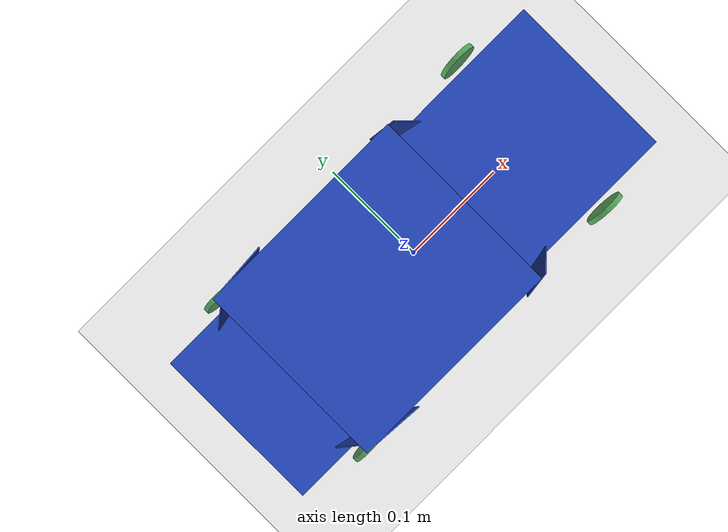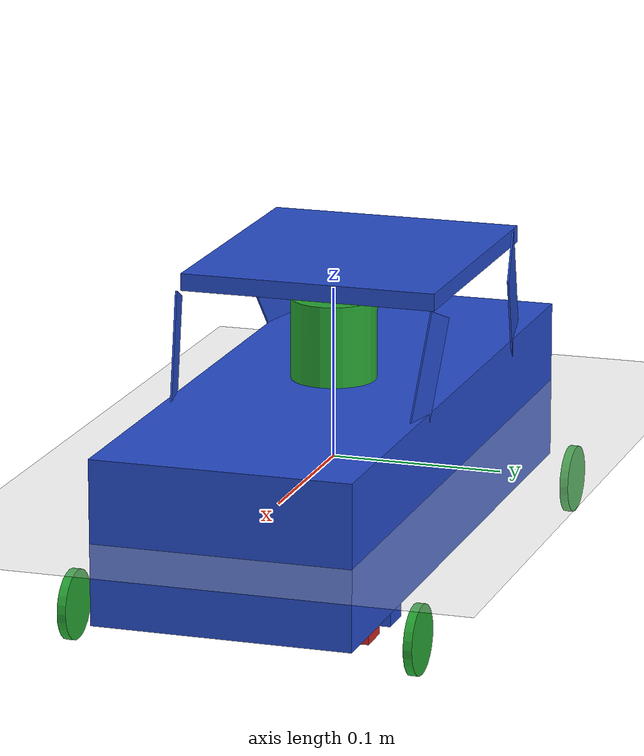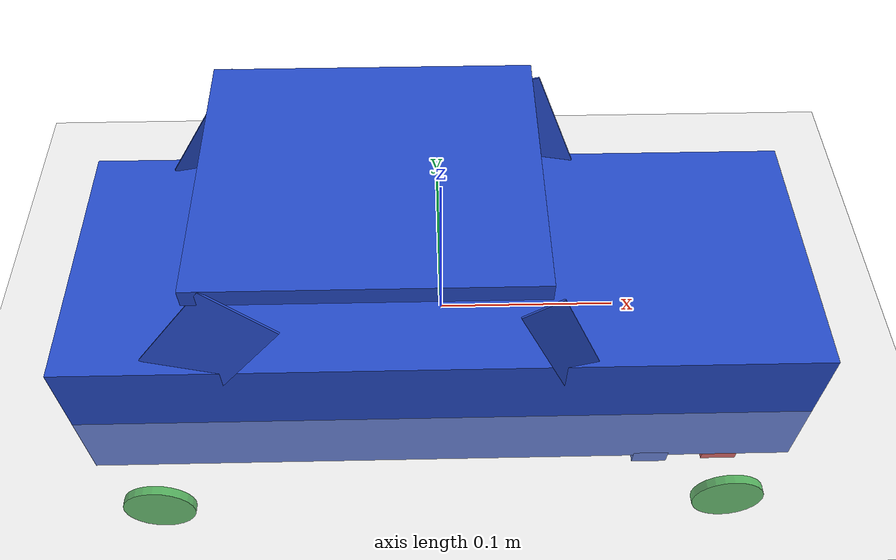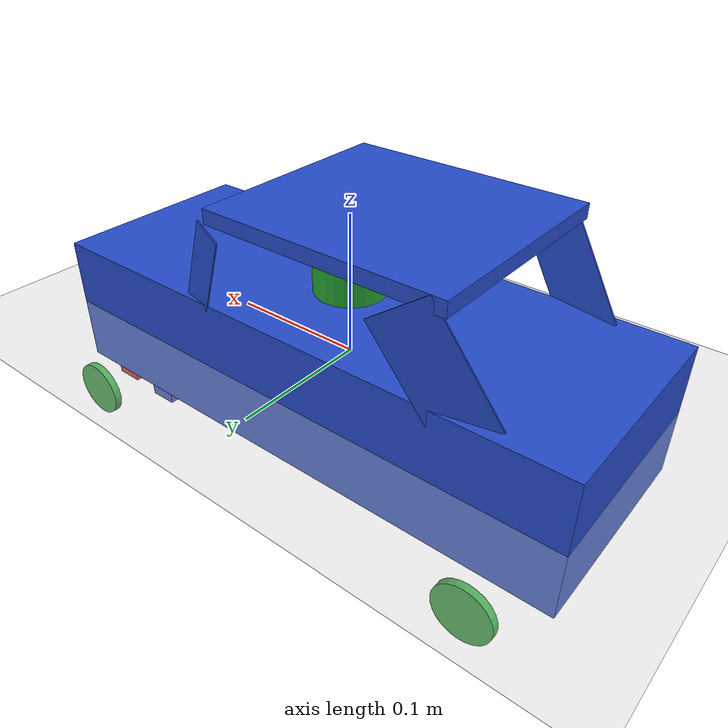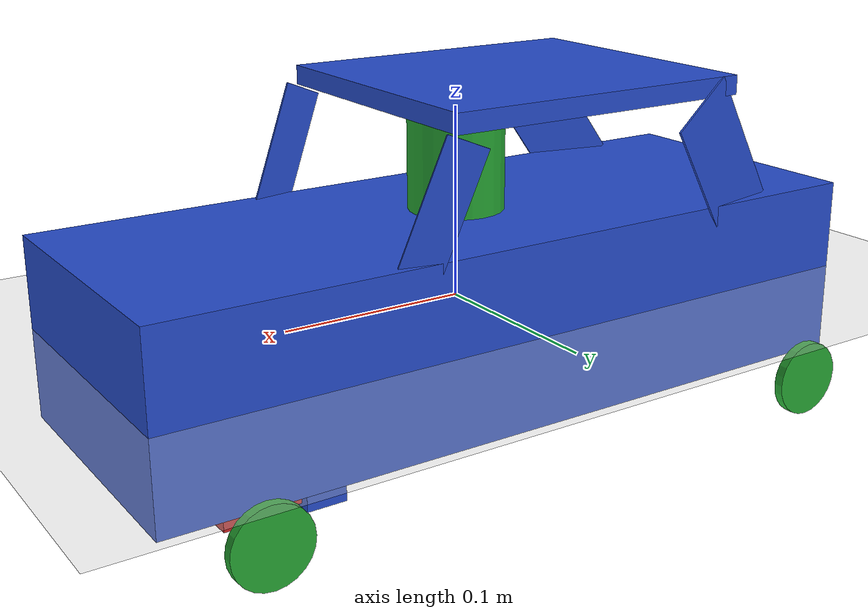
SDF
<?xml version="1.0" ?>
<sdf version="1.5">
  <world name="default">
    <include>
      <uri>model://ground_plane</uri>
    </include>
    <include>
      <uri>model://sun</uri>
    </include>
    <include>
      <uri>model://AutoNOMOS_mini</uri>
      <pose>0 0 0 0 0 0 </pose>
    </include>
  </world>
</sdf>

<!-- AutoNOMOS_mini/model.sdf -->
<sdf version='1.3'>
  <model name='ackermann'>
    <link name='base_link'>
      <pose>0.000000 0.000000 0.000000 0.000000 0.000000 0.000000</pose>
      <inertial>
        <pose>0.002623 0.000000 0.022951 0.000000 0.000000 0.000000</pose>
        <mass>0.610000</mass>
        <inertia>
          <ixx>0.611350</ixx>
          <ixy>0.000000</ixy>
          <ixz>0.000160</ixz>
          <iyy>0.611606</iyy>
          <iyz>0.000000</iyz>
          <izz>0.610256</izz>
        </inertia>
      </inertial>
      <collision name='base_link_geom'>
        <pose>0.000000 0.000000 0.000000 0.000000 0.000000 0.000000</pose>
        <geometry>
          <box>
            <size>0.400000 0.150000 0.09500000</size>
          </box>
        </geometry>
        <surface>
          <contact>
            <ode/>
          </contact>
          <friction>
            <ode/>
          </friction>
        </surface>
      </collision>
      <collision name='base_link_geom_front_link'>
        <pose>0.160000 0.000000 -0.0500000 0.000000 0.000000 0.000000</pose>
        <geometry>
          <box>
            <size>0.020000 0.150000 0.005000</size>
          </box>
        </geometry>
        <surface>
          <contact>
            <ode/>
          </contact>
          <friction>
            <ode/>
          </friction>
        </surface>
        <surface>
          <contact>
            <ode/>
          </contact>
          <friction>
            <ode/>
          </friction>
        </surface>
      </collision>
      <collision name='base_link_geom_laser_base_link'>
        <pose>0.000000 0.000000 0.075000 0.000000 0.000000 0.000000</pose>
        <geometry>
          <box>
            <size>0.050000 0.050000 0.050000</size>
          </box>
        </geometry>
        <surface>
          <contact>
            <ode/>
          </contact>
          <friction>
            <ode/>
          </friction>
        </surface>
      </collision>
      <visual name='base_link_visual'>
        <pose>0.000000 0.000000 0.000000 0.000000 0.000000 0.000000</pose>
        <geometry>
          <box>
            <size>0.400000 0.150000 0.09500000</size>
          </box>
        </geometry>
        <material>
          <script>
            <name>Gazebo/Blue</name>
          </script>
        </material>
      </visual>
      <visual name='base_link_visualfront_link'>
        <pose>0.160000 0.000000 -0.0500000 0.000000 0.000000 0.000000</pose>
        <geometry>
          <box>
            <size>0.020000 0.150000 0.005000</size>
          </box>
        </geometry>
        <material>
          <script>
            <name>Gazebo/Red</name>
          </script>
        </material>
        <material>
          <script>
            <name>Gazebo/Red</name>
          </script>
        </material>
      </visual>
      <visual name='base_link_visuallaser_base_link'>
        <pose>0.000000 0.000000 0.07000 0.000000 0.000000 0.000000</pose>
        <geometry>
          <cylinder>
            <radius> 0.025</radius>
            <length> 0.05 </length>
          </cylinder>
        </geometry>
        <material>
          <script>
            <name>Gazebo/Green</name>
          </script>
        </material>
      </visual>
      <velocity_decay>
        <linear>0.000000</linear>
        <angular>0.000000</angular>
      </velocity_decay>
      <velocity_decay>
        <linear>0.000000</linear>
        <angular>0.000000</angular>
      </velocity_decay>
      <velocity_decay>
        <linear>0.000000</linear>
        <angular>0.000000</angular>
      </velocity_decay>
      <velocity_decay>
        <linear>0.000000</linear>
        <angular>0.000000</angular>
      </velocity_decay>
      <velocity_decay>
        <linear>0.000000</linear>
        <angular>0.000000</angular>
      </velocity_decay>
      <gravity>1</gravity>
      <velocity_decay>
        <linear>0.000000</linear>
        <angular>0.000000</angular>
      </velocity_decay>
      <self_collide>0</self_collide>

      <sensor name="laser" type="ray">
        <pose>0.01 0 0.07 0 -0 0</pose>
        <ray>
          <scan>
            <horizontal>
              <samples>360</samples>
              <resolution>1</resolution>
              <min_angle>0</min_angle>
              <max_angle>6.28318530718</max_angle>
            </horizontal>
          </scan>
          <range>
            <min>0.08</min>
            <max>3</max>
            <resolution>0.01</resolution>
          </range>
        </ray>
        <plugin name="laser" filename="libgazebo_ros_laser.so">
          <robotNamespace></robotNamespace>
          <topicName>/laser_scan</topicName>
          <frameName>map</frameName>
        </plugin>
        <always_on>1</always_on>
        <update_rate>1</update_rate>
        <visualize>true</visualize>
      </sensor>

      <collision name='pilar_front_right'>
        <pose>0.060000 -0.074 0.065 0.000000 -0.385398 0.200000</pose>
        <geometry>
          <box>
            <size>0.022 0.001 0.08</size>
          </box>
        </geometry>
        <surface>
          <contact>
            <ode/>
          </contact>
          <friction>
            <ode/>
          </friction>
        </surface>
      </collision>
      <visual name='pilar_front_right_visual'>
        <pose>0.060000 -0.075 0.065 0.000000 -0.385398 0.2000000</pose>
        <geometry>
          <box>
            <size>0.022 0.001 0.08</size>
          </box>
        </geometry>
        <material>
          <script>
            <name>Gazebo/Blue</name>
          </script>
        </material>
      </visual>

      <collision name='pilar_front_left'>
        <pose>0.060000 0.074 0.065 0.000000 -0.385398 0.200000</pose>
        <geometry>
          <box>
            <size>0.022 0.001 0.08</size>
          </box>
        </geometry>
        <surface>
          <contact>
            <ode/>
          </contact>
          <friction>
            <ode/>
          </friction>
        </surface>
      </collision>
      <visual name='pilar_front_left_visual'>
        <pose>0.060000 0.074 0.065 0.000000 -0.385398 -0.2000000</pose>
        <geometry>
          <box>
            <size>0.022 0.001 0.08</size>
          </box>
        </geometry>
        <material>
          <script>
            <name>Gazebo/Blue</name>
          </script>
        </material>
      </visual>

      <collision name='pilar_back_left'>
        <pose>-0.115 0.074 0.065 0.000000 0.585398 0.2000000</pose>
        <geometry>
          <box>
            <size>0.042 0.001 0.08</size>
          </box>
        </geometry>
        <surface>
          <contact>
            <ode/>
          </contact>
          <friction>
            <ode/>
          </friction>
        </surface>
      </collision>
      <visual name='pilar_back_left_visual'>
        <pose>-0.115 0.074 0.07 0.000000 0.585398 0.2000000</pose>
        <geometry>
          <box>
            <size>0.042 0.001 0.08</size>
          </box>
        </geometry>
        <material>
          <script>
            <name>Gazebo/Blue</name>
          </script>
        </material>
      </visual>

      <collision name='pilar_back_right'>
        <pose>-0.115 -0.074 0.065 0.000000 0.585398 -0.2000000</pose>
        <geometry>
          <box>
            <size>0.042 0.001 0.08</size>
          </box>
        </geometry>
        <surface>
          <contact>
            <ode/>
          </contact>
          <friction>
            <ode/>
          </friction>
        </surface>
      </collision>
      <visual name='pilar_back_right_visual'>
        <pose>-0.115 -0.074 0.07 0.000000 0.585398 -0.2000000</pose>
        <geometry>
          <box>
            <size>0.042 0.001 0.08</size>
          </box>
        </geometry>
        <material>
          <script>
            <name>Gazebo/Blue</name>
          </script>
        </material>
      </visual>

      <collision name='ceiling'>
        <pose>-0.035 0.0 0.11 1.57 0 0</pose>
        <geometry>
          <box>
            <size>0.17 0.01 0.15</size>
          </box>
        </geometry>
        <surface>
          <contact>
            <ode/>
          </contact>
          <friction>
            <ode/>
          </friction>
        </surface>
      </collision>
      <visual name='ceiling_visual'>
        <pose>-0.035 0.0 0.11 1.57 0 0</pose>
        <geometry>
          <box>
            <size>0.17 0.01 0.15</size>
          </box>
        </geometry>
        <material>
          <script>
            <name>Gazebo/Blue</name>
          </script>
        </material>
      </visual>
    </link>
    <link name='back_left_wheel_link'>
      <pose>-0.160000 0.100000 -0.0500000 0.000000 0.000000 0.000000</pose>
      <inertial>
        <pose>0.000000 0.000000 0.000000 0.000000 0.000000 0.000000</pose>
        <mass>0.010000</mass>
        <inertia>
          <ixx>0.010000</ixx>
          <ixy>0.000000</ixy>
          <ixz>0.000000</ixz>
          <iyy>0.010000</iyy>
          <iyz>0.000000</iyz>
          <izz>0.010000</izz>
        </inertia>
      </inertial>
      <collision name='back_left_wheel_link_geom'>
        <pose>0.000000 0.000000 0.000000 1.570800 0.000000 0.000000</pose>
        <geometry>
          <cylinder>
            <length>0.005000</length>
            <radius>0.020000</radius>
          </cylinder>
        </geometry>
        <surface>
          <contact>
            <ode/>
          </contact>
          <friction>
            <ode/>
          </friction>
        </surface>
      </collision>
      <visual name='back_left_wheel_link_visual'>
        <pose>0.000000 0.000000 0.000000 1.570800 0.000000 0.000000</pose>
        <geometry>
          <cylinder>
            <length>0.005000</length>
            <radius>0.020000</radius>
          </cylinder>
        </geometry>
        <material>
          <script>
            <name>Gazebo/Green</name>
          </script>
        </material>
      </visual>
      <gravity>1</gravity>
      <velocity_decay>
        <linear>0.000000</linear>
        <angular>0.000000</angular>
      </velocity_decay>
      <self_collide>0</self_collide>
    </link>
    <joint name='back_left_wheel_joint' type='revolute'>
      <child>back_left_wheel_link</child>
      <parent>base_link</parent>
      <axis>
        <xyz>0.000000 1.000000 0.000000</xyz>
        <limit>
          <lower>-10000000000000000.000000</lower>
          <upper>10000000000000000.000000</upper>
        </limit>
      </axis>
    </joint>
    <link name='back_right_wheel_link'>
      <pose>-0.160000 -0.100000 -0.0500000 0.000000 0.000000 0.000000</pose>
      <inertial>
        <pose>0.000000 0.000000 0.000000 0.000000 0.000000 0.000000</pose>
        <mass>0.010000</mass>
        <inertia>
          <ixx>0.010000</ixx>
          <ixy>0.000000</ixy>
          <ixz>0.000000</ixz>
          <iyy>0.010000</iyy>
          <iyz>0.000000</iyz>
          <izz>0.010000</izz>
        </inertia>
      </inertial>
      <collision name='back_right_wheel_link_geom'>
        <pose>0.000000 0.000000 0.000000 1.570800 0.000000 0.000000</pose>
        <geometry>
          <cylinder>
            <length>0.005000</length>
            <radius>0.020000</radius>
          </cylinder>
        </geometry>
        <surface>
          <contact>
            <ode/>
          </contact>
          <friction>
            <ode/>
          </friction>
        </surface>
      </collision>
      <visual name='back_right_wheel_link_visual'>
        <pose>0.000000 0.000000 0.000000 1.570800 0.000000 0.000000</pose>
        <geometry>
          <cylinder>
            <length>0.005000</length>
            <radius>0.020000</radius>
          </cylinder>
        </geometry>
        <material>
          <script>
            <name>Gazebo/Green</name>
          </script>
        </material>
      </visual>
      <gravity>1</gravity>
      <velocity_decay>
        <linear>0.000000</linear>
        <angular>0.000000</angular>
      </velocity_decay>
      <self_collide>0</self_collide>
    </link>
    <joint name='back_right_wheel_joint' type='revolute'>
      <child>back_right_wheel_link</child>
      <parent>base_link</parent>
      <axis>
        <xyz>0.000000 1.000000 0.000000</xyz>
        <limit>
          <lower>-10000000000000000.000000</lower>
          <upper>10000000000000000.000000</upper>
        </limit>
      </axis>
    </joint>
    <link name='front_left_bar_link'>
      <pose>0.160000 0.060000 -0.0500000 0.000000 0.000000 0.000000</pose>
      <inertial>
        <pose>0.000000 0.000000 0.000000 0.000000 0.000000 0.000000</pose>
        <mass>0.010000</mass>
        <inertia>
          <ixx>0.010000</ixx>
          <ixy>0.000000</ixy>
          <ixz>0.000000</ixz>
          <iyy>0.010000</iyy>
          <iyz>0.000000</iyz>
          <izz>0.010000</izz>
        </inertia>
      </inertial>
      <collision name='front_left_bar_link_geom'>
        <pose>-0.020000 0.000000 0.000000 0.000000 0.000000 0.000000</pose>
        <geometry>
          <box>
            <size>0.040000 0.020000 0.005000</size>
          </box>
        </geometry>
        <surface>
          <contact>
            <ode/>
          </contact>
          <friction>
            <ode/>
          </friction>
        </surface>
      </collision>
      <visual name='front_left_bar_link_visual'>
        <pose>-0.020000 0.000000 0.000000 0.000000 0.000000 0.000000</pose>
        <geometry>
          <box>
            <size>0.040000 0.020000 0.005000</size>
          </box>
        </geometry>
        <material>
          <script>
            <name>Gazebo/Red</name>
          </script>
        </material>
      </visual>
      <gravity>1</gravity>
      <velocity_decay>
        <linear>0.000000</linear>
        <angular>0.000000</angular>
      </velocity_decay>
      <self_collide>0</self_collide>
    </link>
    <joint name='front_left_bar_joint' type='revolute'>
      <child>front_left_bar_link</child>
      <parent>base_link</parent>
      <axis>
        <xyz>0.000000 0.000000 1.000000</xyz>
        <limit>
          <lower>-0.500000</lower>
          <upper>0.500000</upper>
        </limit>
      </axis>
    </joint>
    <link name='front_left_wheel_link'>
      <pose>0.160000 0.100000 -0.0500000 0.000000 0.000000 0.000000</pose>
      <inertial>
        <pose>0.000000 0.000000 0.000000 0.000000 0.000000 0.000000</pose>
        <mass>0.010000</mass>
        <inertia>
          <ixx>0.010000</ixx>
          <ixy>0.000000</ixy>
          <ixz>0.000000</ixz>
          <iyy>0.010000</iyy>
          <iyz>0.000000</iyz>
          <izz>0.010000</izz>
        </inertia>
      </inertial>
      <collision name='front_left_wheel_link_geom'>
        <pose>0.000000 0.000000 0.000000 1.570800 0.000000 0.000000</pose>
        <geometry>
          <cylinder>
            <length>0.005000</length>
            <radius>0.020000</radius>
          </cylinder>
        </geometry>
        <surface>
          <contact>
            <ode/>
          </contact>
          <friction>
            <ode/>
          </friction>
        </surface>
      </collision>
      <visual name='front_left_wheel_link_visual'>
        <pose>0.000000 0.000000 0.000000 1.570800 0.000000 0.000000</pose>
        <geometry>
          <cylinder>
            <length>0.005000</length>
            <radius>0.020000</radius>
          </cylinder>
        </geometry>
        <material>
          <script>
            <name>Gazebo/Green</name>
          </script>
        </material>
      </visual>
      <gravity>1</gravity>
      <velocity_decay>
        <linear>0.000000</linear>
        <angular>0.000000</angular>
      </velocity_decay>
      <self_collide>0</self_collide>
    </link>
    <joint name='front_left_wheel_joint' type='revolute'>
      <child>front_left_wheel_link</child>
      <parent>front_left_bar_link</parent>
      <axis>
        <xyz>0.000000 1.000000 0.000000</xyz>
        <limit>
          <lower>-10000000000000000.000000</lower>
          <upper>10000000000000000.000000</upper>
        </limit>
        <dynamics/>
      </axis>
    </joint>
    <link name='front_right_bar_link'>
      <pose>0.160000 -0.060000 -0.0500000 0.000000 0.000000 0.000000</pose>
      <inertial>
        <pose>0.000000 0.000000 0.000000 0.000000 0.000000 0.000000</pose>
        <mass>0.010000</mass>
        <inertia>
          <ixx>0.010000</ixx>
          <ixy>0.000000</ixy>
          <ixz>0.000000</ixz>
          <iyy>0.010000</iyy>
          <iyz>0.000000</iyz>
          <izz>0.010000</izz>
        </inertia>
      </inertial>
      <collision name='front_right_bar_link_geom'>
        <pose>-0.020000 0.000000 0.000000 0.000000 0.000000 0.000000</pose>
        <geometry>
          <box>
            <size>0.040000 0.020000 0.005000</size>
          </box>
        </geometry>
        <surface>
          <contact>
            <ode/>
          </contact>
          <friction>
            <ode/>
          </friction>
        </surface>
      </collision>
      <visual name='front_right_bar_link_visual'>
        <pose>-0.020000 0.000000 0.000000 0.000000 0.000000 0.000000</pose>
        <geometry>
          <box>
            <size>0.040000 0.020000 0.005000</size>
          </box>
        </geometry>
        <material>
          <script>
            <name>Gazebo/Red</name>
          </script>
        </material>
      </visual>
      <gravity>1</gravity>
      <velocity_decay>
        <linear>0.000000</linear>
        <angular>0.000000</angular>
      </velocity_decay>
      <self_collide>0</self_collide>
    </link>
    <joint name='front_right_bar_joint' type='revolute'>
      <child>front_right_bar_link</child>
      <parent>base_link</parent>
      <axis>
        <xyz>0.000000 0.000000 1.000000</xyz>
        <limit>
          <lower>-0.500000</lower>
          <upper>0.500000</upper>
        </limit>
        <dynamics/>
      </axis>
    </joint>
    <link name='front_right_wheel_link'>
      <pose>0.160000 -0.100000 -0.0500000 0.000000 0.000000 0.000000</pose>
      <inertial>
        <pose>0.000000 0.000000 0.000000 0.000000 0.000000 0.000000</pose>
        <mass>0.010000</mass>
        <inertia>
          <ixx>0.010000</ixx>
          <ixy>0.000000</ixy>
          <ixz>0.000000</ixz>
          <iyy>0.010000</iyy>
          <iyz>0.000000</iyz>
          <izz>0.010000</izz>
        </inertia>
      </inertial>
      <collision name='front_right_wheel_link_geom'>
        <pose>0.000000 0.000000 0.000000 1.570800 0.000000 0.000000</pose>
        <geometry>
          <cylinder>
            <length>0.005000</length>
            <radius>0.020000</radius>
          </cylinder>
        </geometry>
        <surface>
          <contact>
            <ode/>
          </contact>
          <friction>
            <ode/>
          </friction>
        </surface>
      </collision>
      <visual name='front_right_wheel_link_visual'>
        <pose>0.000000 0.000000 0.000000 1.570800 0.000000 0.000000</pose>
        <geometry>
          <cylinder>
            <length>0.005000</length>
            <radius>0.020000</radius>
          </cylinder>
        </geometry>
        <material>
          <script>
            <name>Gazebo/Green</name>
          </script>
        </material>
      </visual>
      <gravity>1</gravity>
      <velocity_decay>
        <linear>0.000000</linear>
        <angular>0.000000</angular>
      </velocity_decay>
      <self_collide>0</self_collide>
    </link>
    <joint name='front_right_wheel_joint' type='revolute'>
      <child>front_right_wheel_link</child>
      <parent>front_right_bar_link</parent>
      <axis>
        <xyz>0.000000 1.000000 0.000000</xyz>
        <limit>
          <lower>-10000000000000000.000000</lower>
          <upper>10000000000000000.000000</upper>
        </limit>
        <dynamics/>
      </axis>
    </joint>
    <link name='steer_link'>
      <pose>0.160000 0.000000 -0.0500000 0.000000 0.000000 0.000000</pose>
      <inertial>
        <pose>0.000000 0.000000 0.000000 0.000000 0.000000 0.000000</pose>
        <mass>0.010000</mass>
        <inertia>
          <ixx>0.010000</ixx>
          <ixy>0.000000</ixy>
          <ixz>0.000000</ixz>
          <iyy>0.010000</iyy>
          <iyz>0.000000</iyz>
          <izz>0.010000</izz>
        </inertia>
      </inertial>
      <collision name='steer_link_geom'>
        <pose>0.020000 0.000000 0.000000 0.000000 0.000000 0.000000</pose>
        <geometry>
          <box>
            <size>0.040000 0.020000 0.005000</size>
          </box>
        </geometry>
        <surface>
          <contact>
            <ode/>
          </contact>
          <friction>
            <ode/>
          </friction>
        </surface>
      </collision>
      <visual name='steer_link_visual'>
        <pose>-0.020000 0.000000 0.000000 0.000000 0.000000 0.000000</pose>
        <geometry>
          <box>
            <size>0.040000 0.020000 0.005000</size>
          </box>
        </geometry>
        <material>
          <script>
            <name>Gazebo/Red</name>
          </script>
        </material>
      </visual>
      <gravity>1</gravity>
      <velocity_decay>
        <linear>0.000000</linear>
        <angular>0.000000</angular>
      </velocity_decay>
      <self_collide>0</self_collide>
    </link>
    <joint name='steer_joint' type='revolute'>
      <child>steer_link</child>
      <parent>base_link</parent>
      <axis>
        <xyz>0.000000 0.000000 1.000000</xyz>
        <limit>
          <lower>-0.500000</lower>
          <upper>0.500000</upper>
        </limit>
        <dynamics/>
      </axis>
    </joint>
    <link name='ackermann_bar_link'>
      <pose>0.120000 0.000000 -0.0500000 0.000000 0.000000 0.000000</pose>
      <inertial>
        <pose>0.000000 0.000000 0.000000 0.000000 0.000000 0.000000</pose>
        <mass>0.010000</mass>
        <inertia>
          <ixx>0.010000</ixx>
          <ixy>0.000000</ixy>
          <ixz>0.000000</ixz>
          <iyy>0.010000</iyy>
          <iyz>0.000000</iyz>
          <izz>0.010000</izz>
        </inertia>
      </inertial>
      <collision name='ackermann_bar_link_geom'>
        <pose>0.000000 0.000000 0.000000 0.000000 0.000000 0.000000</pose>
        <geometry>
          <box>
            <size>0.020000 0.150000 0.010000</size>
          </box>
        </geometry>
        <surface>
          <contact>
            <ode/>
          </contact>
          <friction>
            <ode/>
          </friction>
        </surface>
      </collision>
      <visual name='ackermann_bar_link_visual'>
        <pose>0.000000 0.000000 0.000000 0.000000 0.000000 0.000000</pose>
        <geometry>
          <box>
            <size>0.020000 0.150000 0.010000</size>
          </box>
        </geometry>
        <material>
          <script>
            <name>Gazebo/Blue</name>
          </script>
        </material>
      </visual>
      <gravity>1</gravity>
      <velocity_decay>
        <linear>0.000000</linear>
        <angular>0.000000</angular>
      </velocity_decay>
      <self_collide>0</self_collide>
    </link>
    <joint name='ackermann_joint' type='revolute'>
      <child>ackermann_bar_link</child>
      <parent>steer_link</parent>
      <axis>
        <xyz>0.000000 0.000000 1.000000</xyz>
        <limit>
          <lower>-0.500000</lower>
          <upper>0.500000</upper>
        </limit>
        <dynamics/>
      </axis>
    </joint>
    <joint name='ackermann_left_bar_joint' type='revolute'>
      <parent>front_left_bar_link</parent>
      <child>ackermann_bar_link</child>
      <axis>
        <xyz>0.000000 0.000000 1.000000</xyz>
        <limit>
          <lower>-10000000000000000.000000</lower>
          <upper>10000000000000000.000000</upper>
        </limit>
        <dynamics/>
      </axis>
      <pose>0.000000 0.060000 0.000000 0.000000 0.000000 0.000000</pose>
    </joint>
    <joint name='ackermann_right_bar_joint' type='revolute'>
      <parent>front_right_bar_link</parent>
      <child>ackermann_bar_link</child>
      <axis>
        <xyz>0.000000 0.000000 1.000000</xyz>
        <limit>
          <lower>-10000000000000000.000000</lower>
          <upper>10000000000000000.000000</upper>
        </limit>
        <dynamics/>
      </axis>
      <pose>0.000000 -0.060000 0.000000 0.000000 0.000000 0.000000</pose>
    </joint>
    <static>0</static>
    <pose>0.000000 0.000000 0.25 0.000000 0.000000 0.000000</pose>
  </model>
</sdf>
